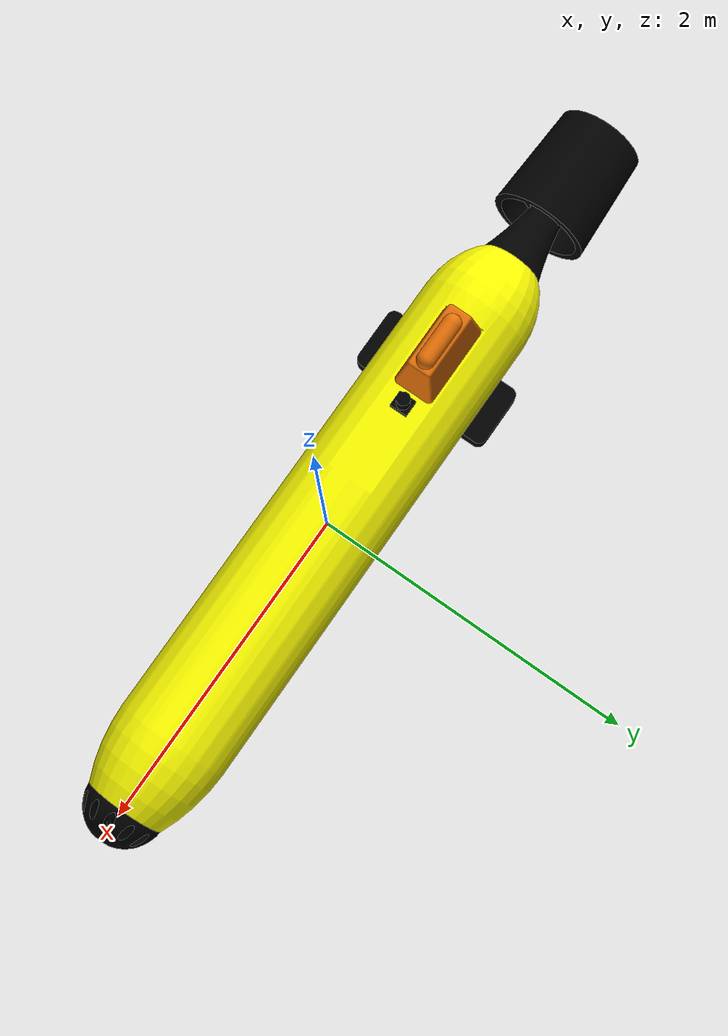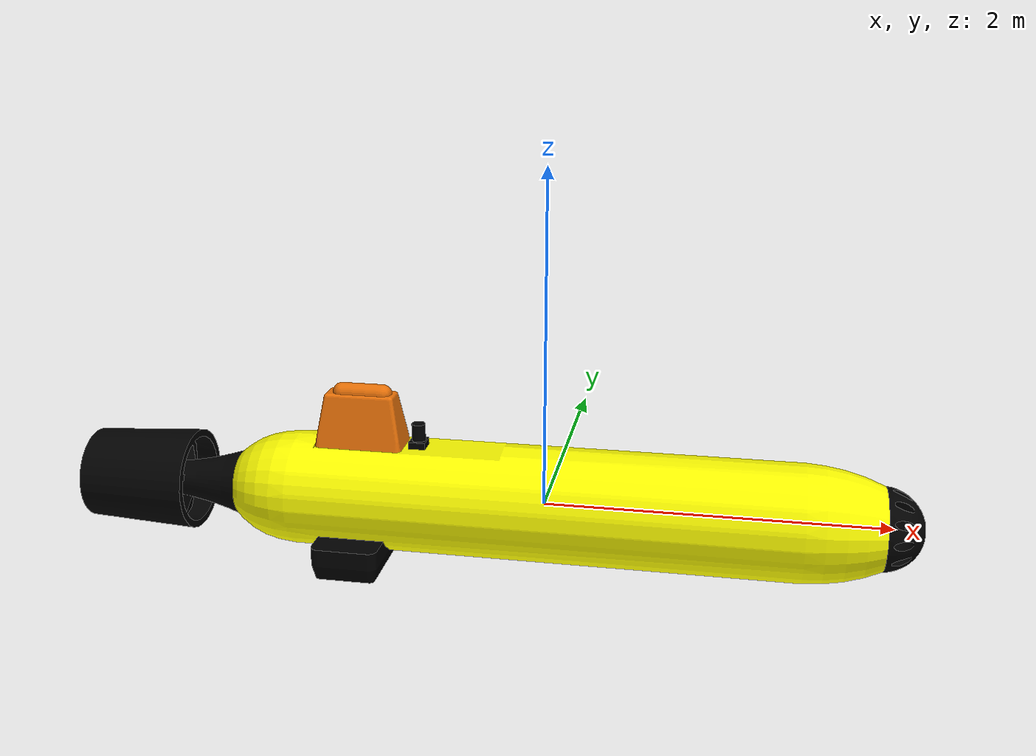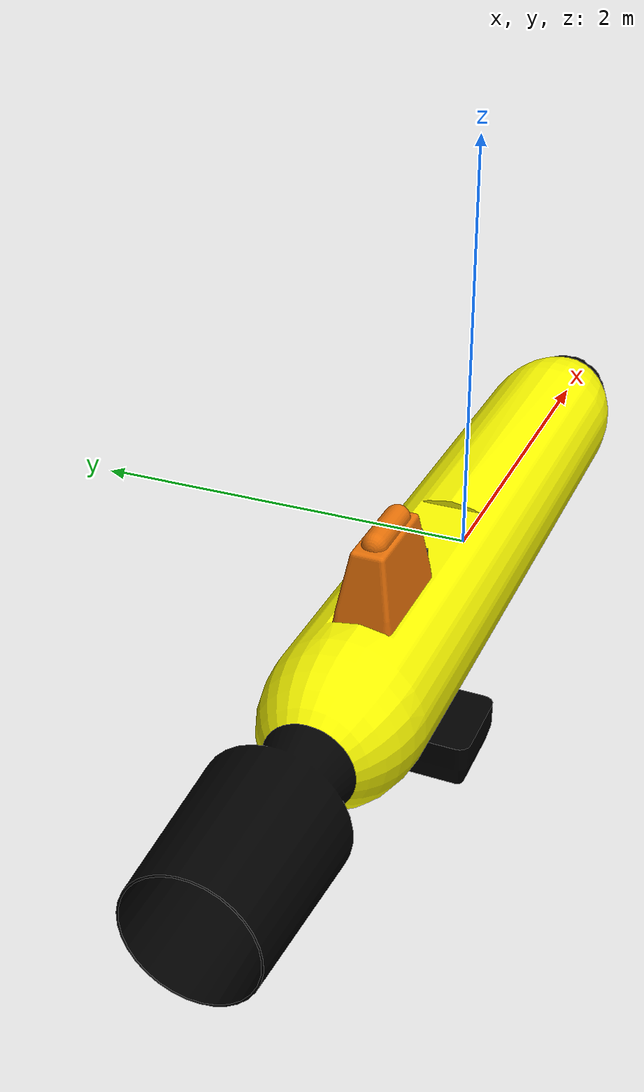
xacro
<?xml version="1.0" encoding="utf-8"?>
<robot name="URDF_model" xmlns:xacro="http://www.ros.org/wiki/xacro">

  <xacro:include filename="$(find auv_model)/urdf/URDF_model.gazebo" />
  <xacro:include filename="$(find auv_model)/urdf/macros.xacro" />

  <link
    name="base_link">
    <inertial>
      <origin
        xyz="0.0598243657915485 0.00290133329460987 3.67262937855884E-05"
        rpy="0 0 0" />
      <mass
        value="1325.81005732747" />
      <inertia
        ixx="75.0383278763661"
        ixy="5.23213671177585"
        ixz="0.0661855673150373"
        iyy="1523.15268262335"
        iyz="0.0242218854314085"
        izz="1521.24413684517" />
    </inertial>
    <visual>
      <origin
        xyz="0 0 0"
        rpy="0 0 0" />
      <geometry>
        <mesh
          filename="package://auv_model/meshes/base_link.STL" />
      </geometry>
      <material
        name="">
        <color
          rgba="1 1 0 1" />
      </material>
    </visual>
    <collision>
      <origin
        xyz="0 0 0"
        rpy="0 0 0" />
      <geometry>
        <mesh
          filename="package://auv_model/meshes/base_link.STL" />
      </geometry>
    </collision>
  </link>
  <link
    name="Mover">
    <inertial>
      <origin
        xyz="1.49053810354141E-14 -0.010000000000019 0.377096811871121"
        rpy="0 0 0" />
      <mass
        value="65.3301026200155" />
      <inertia
        ixx="4.92937645038139"
        ixy="-4.44089209850063E-16"
        ixz="-1.40436946255482E-14"
        iyy="4.92937645038139"
        iyz="1.64479898768852E-14"
        izz="2.78436010637226" />
    </inertial>
    <visual>
      <origin
        xyz="0 0 0"
        rpy="0 0 0" />
      <geometry>
        <mesh
          filename="package://auv_model/meshes/Mover.STL" />
      </geometry>
      <material
        name="">
        <color
          rgba="0 0 0 1" />
      </material>
    </visual>
    <collision>
      <origin
        xyz="0 0 0"
        rpy="0 0 0" />
      <geometry>
        <mesh
          filename="package://auv_model/meshes/Mover.STL" />
      </geometry>
    </collision>
  </link>
  <joint
    name="Mover"
    type="fixed">
    <origin
      xyz="-1.87967556966709 0.00769257030754841 0.0063893944989666"
      rpy="1.5707963267949 -0.877677519942698 -1.5707963267949" />
    <parent
      link="base_link" />
    <child
      link="Mover" />
    <axis
      xyz="0 0 1" />
  </joint>
  <link
    name="Hydroacoustics">
    <inertial>
      <origin
        xyz="1.11686938052565 -0.00999999999998848 0.09520412841901"
        rpy="0 0 0" />
      <mass
        value="69.4012252273888" />
      <inertia
        ixx="4.98886458999504"
        ixy="3.87086365328392E-14"
        ixz="7.62728928310454E-16"
        iyy="1.09963028862361"
        iyz="4.5102810375397E-17"
        izz="5.65850585136366" />
    </inertial>
    <visual>
      <origin
        xyz="0 0 0"
        rpy="0 0 0" />
      <geometry>
        <mesh
          filename="package://auv_model/meshes/Hydroacoustics.STL" />
      </geometry>
      <material
        name="">
        <color
          rgba="0 0 0 1" />
      </material>
    </visual>
    <collision>
      <origin
        xyz="0 0 0"
        rpy="0 0 0" />
      <geometry>
        <mesh
          filename="package://auv_model/meshes/Hydroacoustics.STL" />
      </geometry>
    </collision>
  </link>
  <joint
    name="Hydroacoustics"
    type="fixed">
    <origin
      xyz="0 0.0124607435061293 -0.193857498878105"
      rpy="3.1289039186943 0 3.14159265358979" />
    <parent
      link="base_link" />
    <child
      link="Hydroacoustics" />
    <axis
      xyz="0 0 0" />
  </joint>
  <link
    name="Cap">
    <inertial>
      <origin
        xyz="3.03746122610122E-07 -0.0100013846906931 -0.0815910517056437"
        rpy="0 0 0" />
      <mass
        value="16.6316404230158" />
      <inertia
        ixx="0.282638343401794"
        ixy="5.44403615916648E-07"
        ixz="-7.2505187099246E-08"
        iyy="0.282635956725477"
        iyz="-5.7940151309384E-07"
        izz="0.428188157183661" />
    </inertial>
    <visual>
      <origin
        xyz="0 0 0"
        rpy="0 0 0" />
      <geometry>
        <mesh
          filename="package://auv_model/meshes/Cap.STL" />
      </geometry>
      <material
        name="">
        <color
          rgba="0 0 0 1" />
      </material>
    </visual>
    <collision>
      <origin
        xyz="0 0 0"
        rpy="0 0 0" />
      <geometry>
        <mesh
          filename="package://auv_model/meshes/Cap.STL" />
      </geometry>
    </collision>
  </link>
  <joint
    name="Cap"
    type="fixed">
    <origin
      xyz="1.94116503902016 0 -0.01"
      rpy="-1.5707963267949 0 1.5707963267949" />
    <parent
      link="base_link" />
    <child
      link="Cap" />
    <axis
      xyz="0 0 1" />
  </joint>
  <link
    name="Superstructure">
    <inertial>
      <origin
        xyz="-0.22049574490649 -0.0100000004778598 -1.07934759704319"
        rpy="0 0 0" />
      <mass
        value="31.9212849710129" />
      <inertia
        ixx="0.708670361026006"
        ixy="2.2216407038686E-09"
        ixz="-0.00676492766020198"
        iyy="0.901474495243181"
        iyz="3.14049211889457E-08"
        izz="0.417685194715937" />
    </inertial>
    <visual>
      <origin
        xyz="0 0 0"
        rpy="0 0 0" />
      <geometry>
        <mesh
          filename="package://auv_model/meshes/Superstructure.STL" />
      </geometry>
      <material
        name="">
        <color
          rgba="0.909803921568627 0.443137254901961 0.0313725490196078 1" />
      </material>
    </visual>
    <collision>
      <origin
        xyz="0 0 0"
        rpy="0 0 0" />
      <geometry>
        <mesh
          filename="package://auv_model/meshes/Superstructure.STL" />
      </geometry>
    </collision>
  </link>
  <joint
    name="Superstructure"
    type="fixed">
    <origin
      xyz="-2.19317649174576 0.00182068548972492 0.644641143209999"
      rpy="2.77387617844021 -1.53549300999087 -2.77408521585813" />
    <parent
      link="base_link" />
    <child
      link="Superstructure" />
    <axis
      xyz="0 0 0" />
  </joint>
  <link
    name="Equipment">
    <inertial>
      <origin
        xyz="-0.759875944071666 -0.00999999999999203 0.0605920433227322"
        rpy="0 0 0" />
      <mass
        value="0.996487289220383" />
      <inertia
        ixx="0.00252906500615722"
        ixy="-7.7969653576402E-19"
        ixz="1.56136575225607E-18"
        iyy="0.00245336768829255"
        iyz="-3.26277091282356E-18"
        izz="0.00127480046175545" />
    </inertial>
    <visual>
      <origin
        xyz="0 0 0"
        rpy="0 0 0" />
      <geometry>
        <mesh
          filename="package://auv_model/meshes/Equipment.STL" />
      </geometry>
      <material
        name="">
        <color
          rgba="0 0 0 1" />
      </material>
    </visual>
    <collision>
      <origin
        xyz="0 0 0"
        rpy="0 0 0" />
      <geometry>
        <mesh
          filename="package://auv_model/meshes/Equipment.STL" />
      </geometry>
    </collision>
  </link>
  <joint
    name="Equipment"
    type="fixed">
    <origin
      xyz="0 0.0060404159353092 0.312101767658129"
      rpy="0.0126887348954954 0 0" />
    <parent
      link="base_link" />
    <child
      link="Equipment" />
    <axis
      xyz="0 0 0" />
  </joint>

    <joint name="multibeam_echo_joint" type="fixed">
      <axis xyz="0 1 0" />
      <origin xyz="-1.2 0 -0.4" rpy="0 1.57 0"/>
      <parent link="base_link"/>
      <child link="multibeam_echo_link"/>
    </joint>

    <link name="multibeam_echo_link">
      <collision>
        <origin xyz="0 0 0" rpy="0 0 0"/>
        <geometry>
      <box size="0.1 0.1 0.1"/>
        </geometry>
      </collision>

      <inertial>
        <mass value="1e-5" />
        <origin xyz="0 0 0" rpy="0 0 0"/>
        <inertia ixx="1e-6" ixy="0" ixz="0" iyy="1e-6" iyz="0" izz="1e-6" />
      </inertial>
    </link>

</robot>
